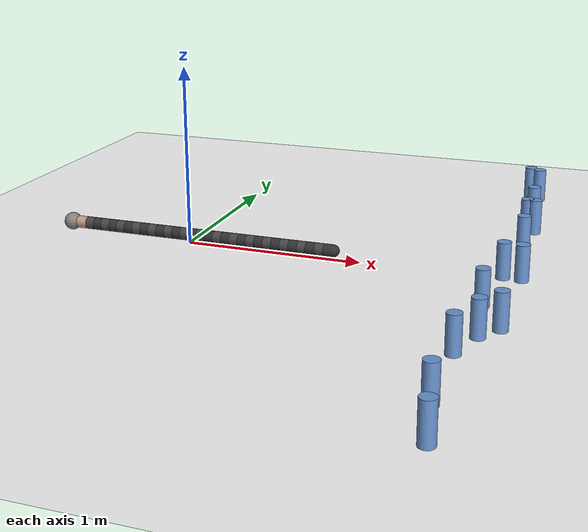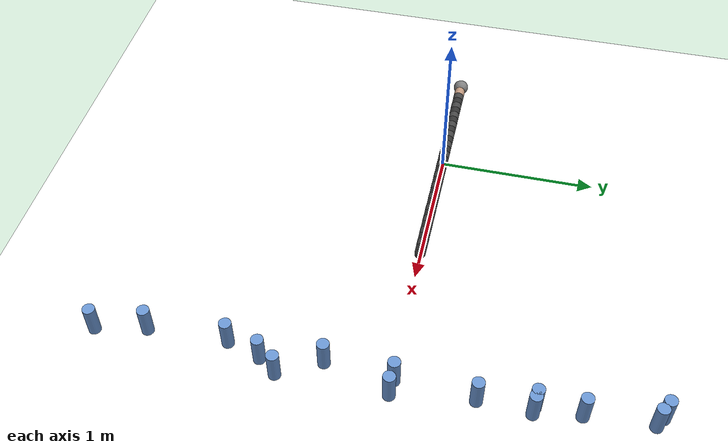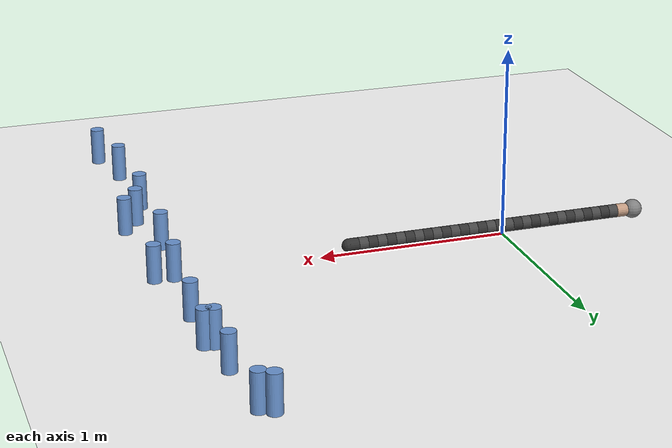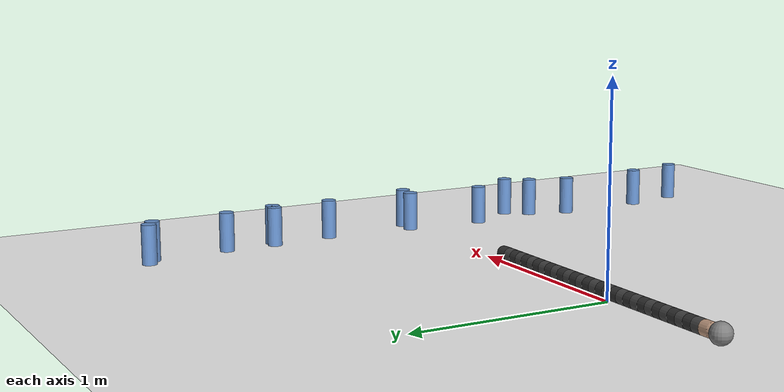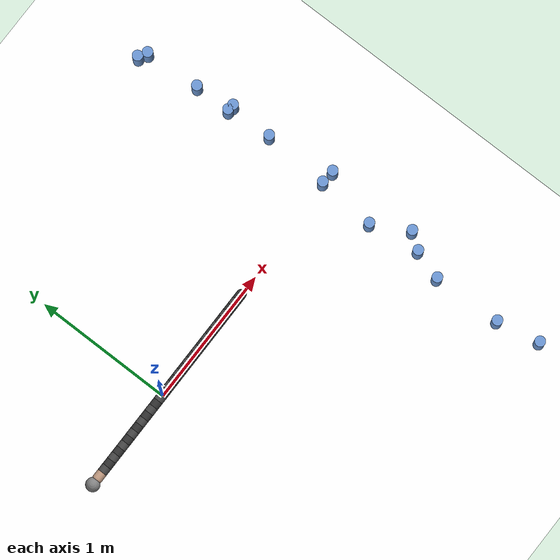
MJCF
<mujoco>
    <!-- === Configuration parameter stuff, default values === -->
    <default>
        <default class="position">
            <position ctrllimited="true" forcelimited="false" />
        </default>
        <default class="geom0">
            <geom conaffinity="0" contype="1" friction="0 0.0 0.0" margin="0.001" rgba="0.75 0.6 0.5 1" solimp="0.95 0.95 0.01" solref="0.008 1" />
        </default>
        <default class="link">
            <joint armature="0.1" damping="5" limited="true" stiffness="0" />
        </default>
    </default>
    <!-- === Physical robot definitions === -->
    <worldbody>
        <light pos="0 0 10" dir="0 0 -1" castshadow="false" />
        <geom type="plane" size="100 100 0.1" rgba="0.984 0.984 0.984 1" />
    <body name="obstacle_custom_13" pos="1.7325 -1.455 0">
            <geom name="obstacle_custom_13_geom" size="0.0375" rgba="0.411 0.580 0.815 1" fromto="0 0 0 0 0 0.2" type="cylinder" />
        </body>
        <body name="obstacle_custom_12" pos="1.785 -0.7575 0">
            <geom name="obstacle_custom_12_geom" size="0.0375" rgba="0.411 0.580 0.815 1" fromto="0 0 0 0 0 0.2" type="cylinder" />
        </body>
        <body name="obstacle_custom_11" pos="1.7625 0.0225 0">
            <geom name="obstacle_custom_11_geom" size="0.0375" rgba="0.411 0.580 0.815 1" fromto="0 0 0 0 0 0.2" type="cylinder" />
        </body>
        <body name="obstacle_custom_10" pos="1.7625 0.8175 0">
            <geom name="obstacle_custom_10_geom" size="0.0375" rgba="0.411 0.580 0.815 1" fromto="0 0 0 0 0 0.2" type="cylinder" />
        </body>
        <body name="obstacle_custom_9" pos="1.68 1.515 0">
            <geom name="obstacle_custom_9_geom" size="0.0375" rgba="0.411 0.580 0.815 1" fromto="0 0 0 0 0 0.2" type="cylinder" />
        </body>
        <body name="obstacle_custom_8" pos="1.7625 1.08 0">
            <geom name="obstacle_custom_8_geom" size="0.0375" rgba="0.411 0.580 0.815 1" fromto="0 0 0 0 0 0.2" type="cylinder" />
        </body>
        <body name="obstacle_custom_7" pos="1.7925 0.495 0">
            <geom name="obstacle_custom_7_geom" size="0.0375" rgba="0.411 0.580 0.815 1" fromto="0 0 0 0 0 0.2" type="cylinder" />
        </body>
        <body name="obstacle_custom_6" pos="1.7325 -0.39 0">
            <geom name="obstacle_custom_6_geom" size="0.0375" rgba="0.411 0.580 0.815 1" fromto="0 0 0 0 0 0.2" type="cylinder" />
        </body>
        <body name="obstacle_custom_5" pos="1.7175 -0.9675 0">
            <geom name="obstacle_custom_5_geom" size="0.0375" rgba="0.411 0.580 0.815 1" fromto="0 0 0 0 0 0.2" type="cylinder" />
        </body>
        <body name="obstacle_custom_4" pos="1.7925 -1.7625 0">
            <geom name="obstacle_custom_4_geom" size="0.0375" rgba="0.411 0.580 0.815 1" fromto="0 0 0 0 0 0.2" type="cylinder" />
        </body>
        <body name="obstacle_custom_3" pos="1.8675 -0.645 0">
            <geom name="obstacle_custom_3_geom" size="0.0375" rgba="0.411 0.580 0.815 1" fromto="0 0 0 0 0 0.2" type="cylinder" />
        </body>
        <body name="obstacle_custom_2" pos="1.86 0.015 0">
            <geom name="obstacle_custom_2_geom" size="0.0375" rgba="0.411 0.580 0.815 1" fromto="0 0 0 0 0 0.2" type="cylinder" />
        </body>
        <body name="obstacle_custom_1" pos="1.8075 0.81 0">
            <geom name="obstacle_custom_1_geom" size="0.0375" rgba="0.411 0.580 0.815 1" fromto="0 0 0 0 0 0.2" type="cylinder" />
        </body>
        <body name="obstacle_custom_0" pos="1.74 1.4775 0">
            <geom name="obstacle_custom_0_geom" size="0.0375" rgba="0.411 0.580 0.815 1" fromto="0 0 0 0 0 0.2" type="cylinder" />
        </body>
        <body name="base" pos="-0.75 0 0.05">
            <geom size="0.05" type="sphere" />
            <joint axis="1 0 0" name="sphere_velocity" pos="0 0 0" range="-200 200" type="slide" />
            <body name="base_link" pos="0.05 0 0">
                <geom class="geom0" fromto="0 0 0 0.05 0 0" size="0.035" type="capsule" />
                <joint axis="0 0 1" class="link" name="base_joint" pos="0 0 0" range="-40.5 40.5" type="hinge" />
                <body name="link_0" pos="0.05 0 0">
                    <geom fromto="0 0 0 0.05 0 0" size="0.035" type="capsule" rgba="0.274 0.274 0.274 1" />
                    <joint axis="0 0 1" class="link" name="joint_0" pos="0 0 0" range="-40.5 40.5" type="hinge" stiffness="10" />
                    <body name="link_1" pos="0.05 0 0">
                        <geom fromto="0 0 0 0.05 0 0" size="0.035" type="capsule" rgba="0.196 0.196 0.196 1" />
                        <joint axis="0 0 1" class="link" name="joint_1" pos="0 0 0" range="-40.5 40.5" type="hinge" stiffness="10" />
                        <body name="link_2" pos="0.05 0 0">
                            <geom fromto="0 0 0 0.05 0 0" size="0.035" type="capsule" rgba="0.274 0.274 0.274 1" />
                            <joint axis="0 0 1" class="link" name="joint_2" pos="0 0 0" range="-40.5 40.5" type="hinge" stiffness="10" />
                            <body name="link_3" pos="0.05 0 0">
                                <geom fromto="0 0 0 0.05 0 0" size="0.035" type="capsule" rgba="0.196 0.196 0.196 1" />
                                <joint axis="0 0 1" class="link" name="joint_3" pos="0 0 0" range="-40.5 40.5" type="hinge" stiffness="10" />
                                <body name="link_4" pos="0.05 0 0">
                                    <geom fromto="0 0 0 0.05 0 0" size="0.035" type="capsule" rgba="0.274 0.274 0.274 1" />
                                    <joint axis="0 0 1" class="link" name="joint_4" pos="0 0 0" range="-40.5 40.5" type="hinge" stiffness="10" />
                                    <body name="link_5" pos="0.05 0 0">
                                        <geom fromto="0 0 0 0.05 0 0" size="0.035" type="capsule" rgba="0.196 0.196 0.196 1" />
                                        <joint axis="0 0 1" class="link" name="joint_5" pos="0 0 0" range="-40.5 40.5" type="hinge" stiffness="10" />
                                        <body name="link_6" pos="0.05 0 0">
                                            <geom fromto="0 0 0 0.05 0 0" size="0.035" type="capsule" rgba="0.274 0.274 0.274 1" />
                                            <joint axis="0 0 1" class="link" name="joint_6" pos="0 0 0" range="-40.5 40.5" type="hinge" stiffness="10" />
                                            <body name="link_7" pos="0.05 0 0">
                                                <geom fromto="0 0 0 0.05 0 0" size="0.035" type="capsule" rgba="0.196 0.196 0.196 1" />
                                                <joint axis="0 0 1" class="link" name="joint_7" pos="0 0 0" range="-40.5 40.5" type="hinge" stiffness="10" />
                                                <body name="link_8" pos="0.05 0 0">
                                                    <geom fromto="0 0 0 0.05 0 0" size="0.035" type="capsule" rgba="0.274 0.274 0.274 1" />
                                                    <joint axis="0 0 1" class="link" name="joint_8" pos="0 0 0" range="-40.5 40.5" type="hinge" stiffness="10" />
                                                    <body name="link_9" pos="0.05 0 0">
                                                        <geom fromto="0 0 0 0.05 0 0" size="0.035" type="capsule" rgba="0.196 0.196 0.196 1" />
                                                        <joint axis="0 0 1" class="link" name="joint_9" pos="0 0 0" range="-40.5 40.5" type="hinge" stiffness="10" />
                                                        <body name="link_10" pos="0.05 0 0">
                                                            <geom fromto="0 0 0 0.05 0 0" size="0.035" type="capsule" rgba="0.274 0.274 0.274 1" />
                                                            <joint axis="0 0 1" class="link" name="joint_10" pos="0 0 0" range="-40.5 40.5" type="hinge" stiffness="10" />
                                                            <body name="link_11" pos="0.05 0 0">
                                                                <geom fromto="0 0 0 0.05 0 0" size="0.035" type="capsule" rgba="0.196 0.196 0.196 1" />
                                                                <joint axis="0 0 1" class="link" name="joint_11" pos="0 0 0" range="-40.5 40.5" type="hinge" stiffness="10" />
                                                                <body name="link_12" pos="0.05 0 0">
                                                                    <geom fromto="0 0 0 0.05 0 0" size="0.035" type="capsule" rgba="0.274 0.274 0.274 1" />
                                                                    <joint axis="0 0 1" class="link" name="joint_12" pos="0 0 0" range="-40.5 40.5" type="hinge" stiffness="10" />
                                                                    <body name="link_13" pos="0.05 0 0">
                                                                        <geom fromto="0 0 0 0.05 0 0" size="0.035" type="capsule" rgba="0.196 0.196 0.196 1" />
                                                                        <joint axis="0 0 1" class="link" name="joint_13" pos="0 0 0" range="-40.5 40.5" type="hinge" stiffness="10" />
                                                                        <body name="link_14" pos="0.05 0 0">
                                                                            <geom fromto="0 0 0 0.05 0 0" size="0.035" type="capsule" rgba="0.274 0.274 0.274 1" />
                                                                            <joint axis="0 0 1" class="link" name="joint_14" pos="0 0 0" range="-40.5 40.5" type="hinge" stiffness="10" />
                                                                            <body name="link_15" pos="0.05 0 0">
                                                                                <geom fromto="0 0 0 0.05 0 0" size="0.035" type="capsule" rgba="0.196 0.196 0.196 1" />
                                                                                <joint axis="0 0 1" class="link" name="joint_15" pos="0 0 0" range="-40.5 40.5" type="hinge" stiffness="10" />
                                                                                <body name="link_16" pos="0.05 0 0">
                                                                                    <geom fromto="0 0 0 0.05 0 0" size="0.035" type="capsule" rgba="0.274 0.274 0.274 1" />
                                                                                    <joint axis="0 0 1" class="link" name="joint_16" pos="0 0 0" range="-40.5 40.5" type="hinge" stiffness="10" />
                                                                                    <body name="link_17" pos="0.05 0 0">
                                                                                        <geom fromto="0 0 0 0.05 0 0" size="0.035" type="capsule" rgba="0.196 0.196 0.196 1" />
                                                                                        <joint axis="0 0 1" class="link" name="joint_17" pos="0 0 0" range="-40.5 40.5" type="hinge" stiffness="10" />
                                                                                        <body name="link_18" pos="0.05 0 0">
                                                                                            <geom fromto="0 0 0 0.05 0 0" size="0.035" type="capsule" rgba="0.274 0.274 0.274 1" />
                                                                                            <joint axis="0 0 1" class="link" name="joint_18" pos="0 0 0" range="-40.5 40.5" type="hinge" stiffness="10" />
                                                                                            <body name="link_19" pos="0.05 0 0">
                                                                                                <geom fromto="0 0 0 0.05 0 0" size="0.035" type="capsule" rgba="0.196 0.196 0.196 1" />
                                                                                                <joint axis="0 0 1" class="link" name="joint_19" pos="0 0 0" range="-40.5 40.5" type="hinge" stiffness="10" />
                                                                                                <body name="link_20" pos="0.05 0 0">
                                                                                                    <geom fromto="0 0 0 0.05 0 0" size="0.035" type="capsule" rgba="0.274 0.274 0.274 1" />
                                                                                                    <joint axis="0 0 1" class="link" name="joint_20" pos="0 0 0" range="-40.5 40.5" type="hinge" stiffness="10" />
                                                                                                    <body name="link_21" pos="0.05 0 0">
                                                                                                        <geom fromto="0 0 0 0.05 0 0" size="0.035" type="capsule" rgba="0.196 0.196 0.196 1" />
                                                                                                        <joint axis="0 0 1" class="link" name="joint_21" pos="0 0 0" range="-40.5 40.5" type="hinge" stiffness="10" />
                                                                                                        <body name="link_22" pos="0.05 0 0">
                                                                                                            <geom fromto="0 0 0 0.05 0 0" size="0.035" type="capsule" rgba="0.274 0.274 0.274 1" />
                                                                                                            <joint axis="0 0 1" class="link" name="joint_22" pos="0 0 0" range="-40.5 40.5" type="hinge" stiffness="10" />
                                                                                                            <body name="link_23" pos="0.05 0 0">
                                                                                                                <geom fromto="0 0 0 0.05 0 0" size="0.035" type="capsule" rgba="0.196 0.196 0.196 1" />
                                                                                                                <joint axis="0 0 1" class="link" name="joint_23" pos="0 0 0" range="-40.5 40.5" type="hinge" stiffness="10" />
                                                                                                                <body name="link_24" pos="0.05 0 0">
                                                                                                                    <geom fromto="0 0 0 0.05 0 0" size="0.035" type="capsule" rgba="0.274 0.274 0.274 1" />
                                                                                                                    <joint axis="0 0 1" class="link" name="joint_24" pos="0 0 0" range="-40.5 40.5" type="hinge" stiffness="10" />
                                                                                                                    <body name="link_25" pos="0.05 0 0">
                                                                                                                        <geom fromto="0 0 0 0.05 0 0" size="0.035" type="capsule" rgba="0.196 0.196 0.196 1" />
                                                                                                                        <joint axis="0 0 1" class="link" name="joint_25" pos="0 0 0" range="-40.5 40.5" type="hinge" stiffness="10" />
                                                                                                                        <body name="link_26" pos="0.05 0 0">
                                                                                                                            <geom fromto="0 0 0 0.05 0 0" size="0.035" type="capsule" rgba="0.274 0.274 0.274 1" />
                                                                                                                            <joint axis="0 0 1" class="link" name="joint_26" pos="0 0 0" range="-40.5 40.5" type="hinge" stiffness="10" />
                                                                                                                            <body name="link_27" pos="0.05 0 0">
                                                                                                                                <geom fromto="0 0 0 0.05 0 0" size="0.035" type="capsule" rgba="0.196 0.196 0.196 1" />
                                                                                                                                <joint axis="0 0 1" class="link" name="joint_27" pos="0 0 0" range="-40.5 40.5" type="hinge" stiffness="10" />
                                                                                                                                <body name="link_28" pos="0.05 0 0">
                                                                                                                                    <geom fromto="0 0 0 0.05 0 0" size="0.035" type="capsule" rgba="0.274 0.274 0.274 1" />
                                                                                                                                    <joint axis="0 0 1" class="link" name="joint_28" pos="0 0 0" range="-40.5 40.5" type="hinge" stiffness="10" />
                                                                                                                                    <body name="link_29" pos="0.05 0 0">
                                                                                                                                        <geom fromto="0 0 0 0.05 0 0" size="0.035" type="capsule" rgba="0.196 0.196 0.196 1" />
                                                                                                                                        <joint axis="0 0 1" class="link" name="joint_29" pos="0 0 0" range="-40.5 40.5" type="hinge" stiffness="10" />
                                                                                                                                    </body>
                                                                                                                                </body>
                                                                                                                            </body>
                                                                                                                        </body>
                                                                                                                    </body>
                                                                                                                </body>
                                                                                                            </body>
                                                                                                        </body>
                                                                                                    </body>
                                                                                                </body>
                                                                                            </body>
                                                                                        </body>
                                                                                    </body>
                                                                                </body>
                                                                            </body>
                                                                        </body>
                                                                    </body>
                                                                </body>
                                                            </body>
                                                        </body>
                                                    </body>
                                                </body>
                                            </body>
                                        </body>
                                    </body>
                                </body>
                            </body>
                        </body>
                    </body>
                </body>
            </body>
        </body>
    </worldbody>
    <actuator>
        <velocity ctrlrange="-4 4" joint="sphere_velocity" name="sphere_velocity_act" />
        <motor class="position" ctrlrange="-40.5 40.5" joint="base_joint" name="act_base_joint" />
        <motor class="position" ctrlrange="-40.5 40.5" joint="joint_0" name="act_joint_0" />
        <motor class="position" ctrlrange="-40.5 40.5" joint="joint_1" name="act_joint_1" />
        <motor class="position" ctrlrange="-40.5 40.5" joint="joint_2" name="act_joint_2" />
        <motor class="position" ctrlrange="-40.5 40.5" joint="joint_3" name="act_joint_3" />
        <motor class="position" ctrlrange="-40.5 40.5" joint="joint_4" name="act_joint_4" />
        <motor class="position" ctrlrange="-40.5 40.5" joint="joint_5" name="act_joint_5" />
        <motor class="position" ctrlrange="-40.5 40.5" joint="joint_6" name="act_joint_6" />
        <motor class="position" ctrlrange="-40.5 40.5" joint="joint_7" name="act_joint_7" />
        <motor class="position" ctrlrange="-40.5 40.5" joint="joint_8" name="act_joint_8" />
        <motor class="position" ctrlrange="-40.5 40.5" joint="joint_9" name="act_joint_9" />
        <motor class="position" ctrlrange="-40.5 40.5" joint="joint_10" name="act_joint_10" />
        <motor class="position" ctrlrange="-40.5 40.5" joint="joint_11" name="act_joint_11" />
        <motor class="position" ctrlrange="-40.5 40.5" joint="joint_12" name="act_joint_12" />
        <motor class="position" ctrlrange="-40.5 40.5" joint="joint_13" name="act_joint_13" />
        <motor class="position" ctrlrange="-40.5 40.5" joint="joint_14" name="act_joint_14" />
        <motor class="position" ctrlrange="-40.5 40.5" joint="joint_15" name="act_joint_15" />
        <motor class="position" ctrlrange="-40.5 40.5" joint="joint_16" name="act_joint_16" />
        <motor class="position" ctrlrange="-40.5 40.5" joint="joint_17" name="act_joint_17" />
        <motor class="position" ctrlrange="-40.5 40.5" joint="joint_18" name="act_joint_18" />
        <motor class="position" ctrlrange="-40.5 40.5" joint="joint_19" name="act_joint_19" />
        <motor class="position" ctrlrange="-40.5 40.5" joint="joint_20" name="act_joint_20" />
        <motor class="position" ctrlrange="-40.5 40.5" joint="joint_21" name="act_joint_21" />
        <motor class="position" ctrlrange="-40.5 40.5" joint="joint_22" name="act_joint_22" />
        <motor class="position" ctrlrange="-40.5 40.5" joint="joint_23" name="act_joint_23" />
        <motor class="position" ctrlrange="-40.5 40.5" joint="joint_24" name="act_joint_24" />
        <motor class="position" ctrlrange="-40.5 40.5" joint="joint_25" name="act_joint_25" />
        <motor class="position" ctrlrange="-40.5 40.5" joint="joint_26" name="act_joint_26" />
        <motor class="position" ctrlrange="-40.5 40.5" joint="joint_27" name="act_joint_27" />
        <motor class="position" ctrlrange="-40.5 40.5" joint="joint_28" name="act_joint_28" />
        <motor class="position" ctrlrange="-40.5 40.5" joint="joint_29" name="act_joint_29" />
    </actuator>
    <asset />
    <option gravity="0 0 -1.8" />
</mujoco>
